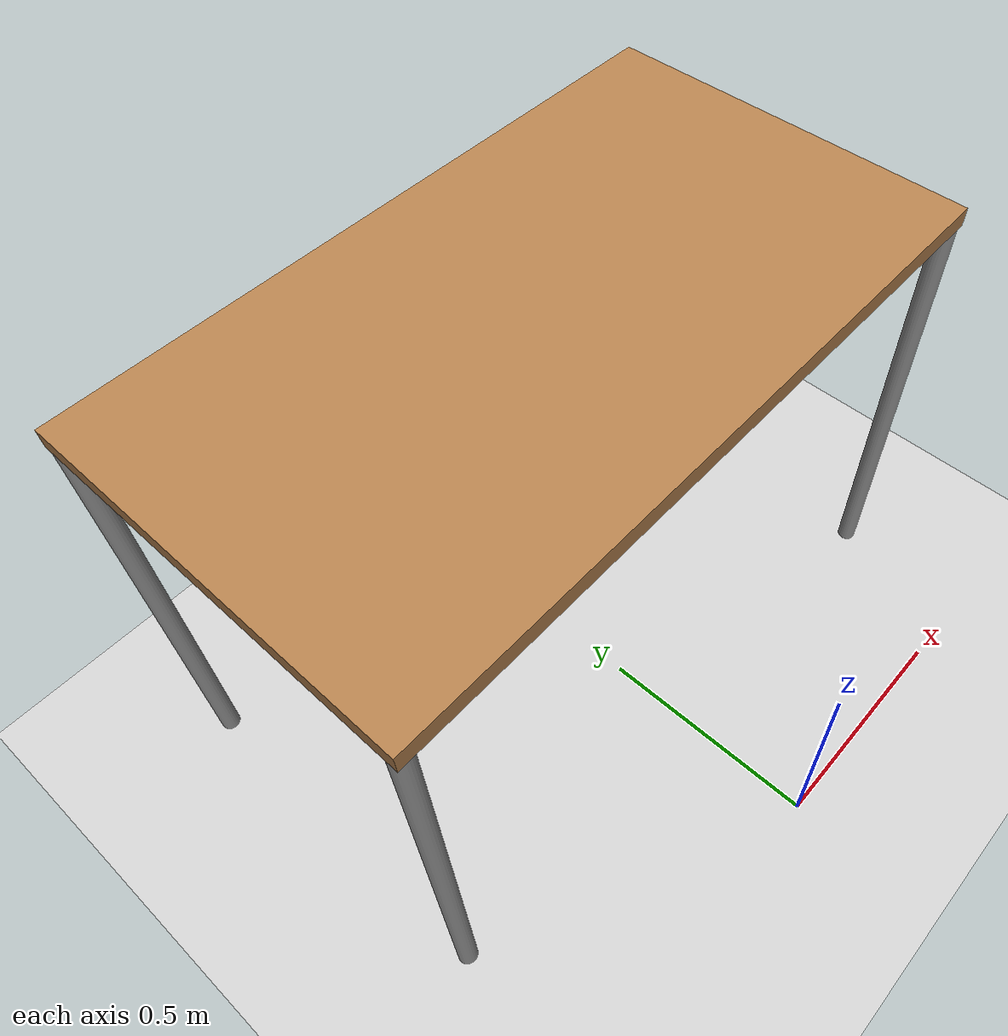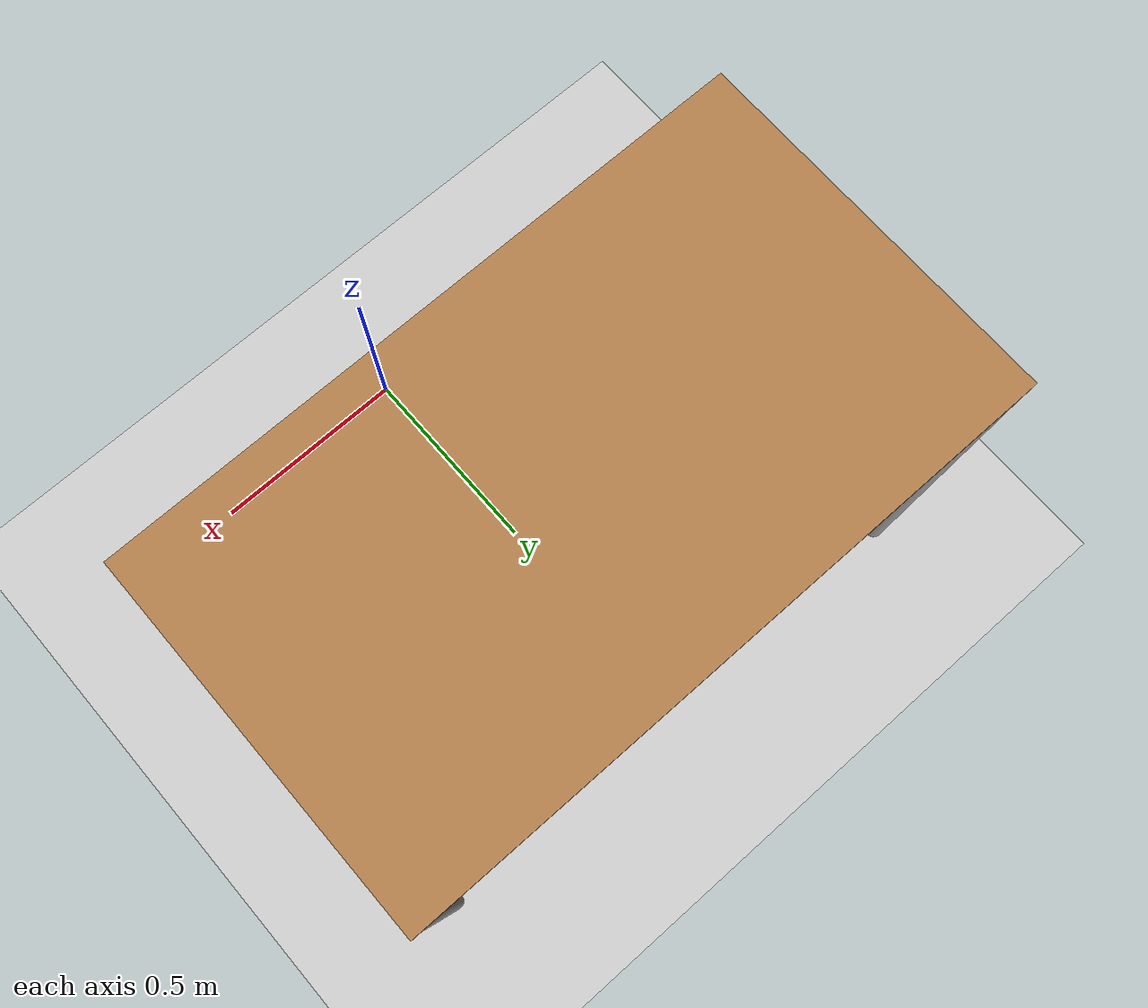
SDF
<?xml version="1.0"?>
<sdf version='1.4'>
  <world name='simple_grasping'>
    <!-- A global light source -->
    <include>
      <uri>model://sun</uri>
    </include>

    <!-- A ground plane -->
    <include>
      <uri>model://ground_plane</uri>
    </include>

    <physics type="ode">
      <real_time_update_rate>1000.0</real_time_update_rate>
      <max_step_size>0.001</max_step_size>
      <real_time_factor>1</real_time_factor>
      <ode>
        <solver>
          <type>quick</type>
          <iters>150</iters>
          <precon_iters>0</precon_iters>
          <sor>1.400000</sor>
          <use_dynamic_moi_rescaling>1</use_dynamic_moi_rescaling>
        </solver>
        <constraints>
          <cfm>0.00001</cfm>
          <erp>0.2</erp>
          <contact_max_correcting_vel>2000.000000</contact_max_correcting_vel>
          <contact_surface_layer>0.01000</contact_surface_layer>
        </constraints>
      </ode>
    </physics>

    <scene>
      <ambient>0.4 0.4 0.4 1</ambient>
      <background>0.7 0.7 0.7 1</background>
      <shadows>false</shadows>
    </scene>

    <gui fullscreen='0'>
      <camera name='user_camera'>
        <pose>4.3 2.3 3.3 0 0.45 -2.8</pose>
        <view_controller>orbit</view_controller>
      </camera>
    </gui>

    <!-- models -->

    <!-- table -->
    <include>
      <pose>0 0.7 0 0 0 0</pose>
      <uri>model://table</uri>
    </include>

    <!-- object to grasp, a cylinder, spawn via launch file! -->

  </world>
</sdf>

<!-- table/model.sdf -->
<sdf version='1.6'>
  <model name='table'>
    <link name='link'>
      <collision name='surface'>
        <pose frame=''>0 0 1 0 0 0</pose>
        <geometry>
          <box>
            <size>1.5 0.8 0.03</size>
          </box>
        </geometry>
        <surface>
          <friction>
            <ode>
              <mu>0.6</mu>
              <mu2>0.6</mu2>
            </ode>
          </friction>
        </surface>
      </collision>
      <visual name='visual1'>
        <pose frame=''>0 0 1 0 0 0</pose>
        <geometry>
          <box>
            <size>1.4 0.8 0.04</size>
          </box>
        </geometry>
        <material>
          <script>
            <uri>file://media/materials/scripts/gazebo.material</uri>
            <name>Gazebo/Wood</name>
          </script>
        </material>
      </visual>
      <collision name='front_left_leg'>
        <pose frame=''>0.68 0.38 0.5 0 0 0</pose>
        <geometry>
          <cylinder>
            <radius>0.02</radius>
            <length>1</length>
          </cylinder>
        </geometry>
      </collision>
      <visual name='front_left_leg'>
        <pose frame=''>0.68 0.38 0.5 0 0 0</pose>
        <geometry>
          <cylinder>
            <radius>0.02</radius>
            <length>1</length>
          </cylinder>
        </geometry>
        <material>
          <script>
            <uri>file://media/materials/scripts/gazebo.material</uri>
            <name>Gazebo/Grey</name>
          </script>
        </material>
      </visual>
      <collision name='front_right_leg'>
        <pose frame=''>0.68 -0.38 0.5 0 0 0</pose>
        <geometry>
          <cylinder>
            <radius>0.02</radius>
            <length>1</length>
          </cylinder>
        </geometry>
      </collision>
      <visual name='front_right_leg'>
        <pose frame=''>0.68 -0.38 0.5 0 0 0</pose>
        <geometry>
          <cylinder>
            <radius>0.02</radius>
            <length>1</length>
          </cylinder>
        </geometry>
        <material>
          <script>
            <uri>file://media/materials/scripts/gazebo.material</uri>
            <name>Gazebo/Grey</name>
          </script>
        </material>
      </visual>
      <collision name='back_right_leg'>
        <pose frame=''>-0.68 -0.38 0.5 0 0 0</pose>
        <geometry>
          <cylinder>
            <radius>0.02</radius>
            <length>1</length>
          </cylinder>
        </geometry>
      </collision>
      <visual name='back_right_leg'>
        <pose frame=''>-0.68 -0.38 0.5 0 0 0</pose>
        <geometry>
          <cylinder>
            <radius>0.02</radius>
            <length>1</length>
          </cylinder>
        </geometry>
        <material>
          <script>
            <uri>file://media/materials/scripts/gazebo.material</uri>
            <name>Gazebo/Grey</name>
          </script>
        </material>
      </visual>
      <collision name='back_left_leg'>
        <pose frame=''>-0.68 0.38 0.5 0 0 0</pose>
        <geometry>
          <cylinder>
            <radius>0.02</radius>
            <length>1</length>
          </cylinder>
        </geometry>
      </collision>
      <visual name='back_left_leg'>
        <pose frame=''>-0.68 0.38 0.5 0 0 0</pose>
        <geometry>
          <cylinder>
            <radius>0.02</radius>
            <length>1</length>
          </cylinder>
        </geometry>
        <material>
          <script>
            <uri>file://media/materials/scripts/gazebo.material</uri>
            <name>Gazebo/Grey</name>
          </script>
        </material>
      </visual>
    </link>

    <static>1</static>
    <allow_auto_disable>1</allow_auto_disable>
  </model>
</sdf>
